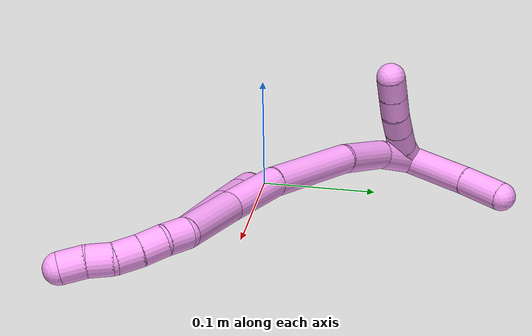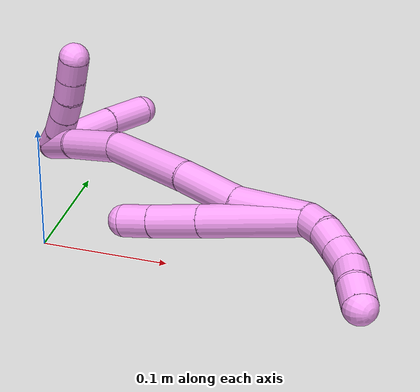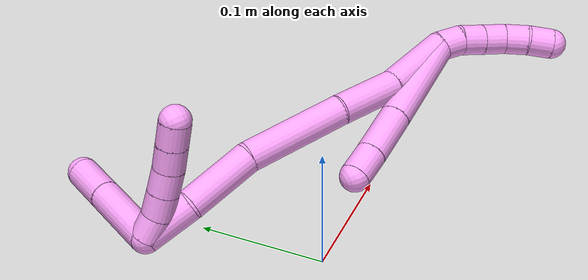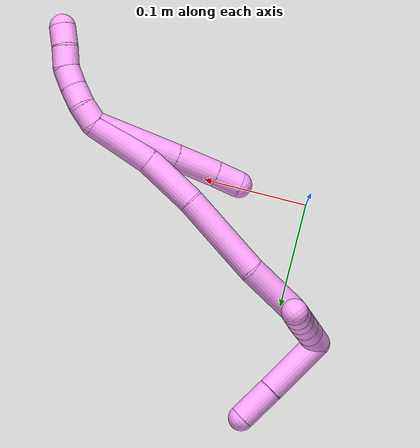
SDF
<sdf version="1.7">
 <world name="default">
  <model name="4">
   <static>0</static>
   <link name="4">
    <collision name="collision-cylinder-e_1_2_8">
     <pose>-0.015197 -0.01651 -0.03533 2.70443 -0.371599 -1.40457</pose>
     <geometry><cylinder><radius>0.0125</radius><length>0.083707</length></cylinder></geometry>
     <surface>
      <friction><ode><mu>1.16</mu><mu2>1.16</mu2><slip1>0</slip1><slip2>0</slip2></ode></friction>
      <contact><ode><kp>1e+06</kp><kd>1</kd><max_vel>0</max_vel><min_depth>0.001</min_depth></ode></contact>
     </surface>
    </collision>
    <visual name="visual-cylinder-e_1_2_8">
     <pose>-0.015197 -0.01651 -0.03533 2.70443 -0.371599 -1.40457</pose>
     <geometry><cylinder><radius>0.0125</radius><length>0.083707</length></cylinder></geometry>
     <material><ambient>1 0.65098 0.996078 1</ambient></material>
    </visual>
    <collision name="collision-cylinder-e_2_8_9">
     <pose>-0.037666 -0.041027 -0.088281 2.71514 -0.359374 -1.39608</pose>
     <geometry><cylinder><radius>0.0125</radius><length>0.041354</length></cylinder></geometry>
     <surface>
      <friction><ode><mu>1.16</mu><mu2>1.16</mu2><slip1>0</slip1><slip2>0</slip2></ode></friction>
      <contact><ode><kp>1e+06</kp><kd>1</kd><max_vel>0</max_vel><min_depth>0.001</min_depth></ode></contact>
     </surface>
    </collision>
    <visual name="visual-cylinder-e_2_8_9">
     <pose>-0.037666 -0.041027 -0.088281 2.71514 -0.359374 -1.39608</pose>
     <geometry><cylinder><radius>0.0125</radius><length>0.041354</length></cylinder></geometry>
     <material><ambient>1 0.65098 0.996078 1</ambient></material>
    </visual>
    <collision name="collision-cylinder-e_3_9_6">
     <pose>-0.049149 -0.053552 -0.116736 2.74641 -0.344431 -1.43063</pose>
     <geometry><cylinder><radius>0.0125</radius><length>0.024939</length></cylinder></geometry>
     <surface>
      <friction><ode><mu>1.16</mu><mu2>1.16</mu2><slip1>0</slip1><slip2>0</slip2></ode></friction>
      <contact><ode><kp>1e+06</kp><kd>1</kd><max_vel>0</max_vel><min_depth>0.001</min_depth></ode></contact>
     </surface>
    </collision>
    <visual name="visual-cylinder-e_3_9_6">
     <pose>-0.049149 -0.053552 -0.116736 2.74641 -0.344431 -1.43063</pose>
     <geometry><cylinder><radius>0.0125</radius><length>0.024939</length></cylinder></geometry>
     <material><ambient>1 0.65098 0.996078 1</ambient></material>
    </visual>
    <collision name="collision-cylinder-e_1_2_10">
     <pose>-0.000119 -0.001089 0.00994 0.109158 -0.011894 -0.00065</pose>
     <geometry><cylinder><radius>0.0125</radius><length>0.02</length></cylinder></geometry>
     <surface>
      <friction><ode><mu>1.16</mu><mu2>1.16</mu2><slip1>0</slip1><slip2>0</slip2></ode></friction>
      <contact><ode><kp>1e+06</kp><kd>1</kd><max_vel>0</max_vel><min_depth>0.001</min_depth></ode></contact>
     </surface>
    </collision>
    <visual name="visual-cylinder-e_1_2_10">
     <pose>-0.000119 -0.001089 0.00994 0.109158 -0.011894 -0.00065</pose>
     <geometry><cylinder><radius>0.0125</radius><length>0.02</length></cylinder></geometry>
     <material><ambient>1 0.65098 0.996078 1</ambient></material>
    </visual>
    <collision name="collision-cylinder-e_2_10_11">
     <pose>-0.000648 -0.005653 0.029248 0.355167 -0.041008 -0.007361</pose>
     <geometry><cylinder><radius>0.0125</radius><length>0.02</length></cylinder></geometry>
     <surface>
      <friction><ode><mu>1.16</mu><mu2>1.16</mu2><slip1>0</slip1><slip2>0</slip2></ode></friction>
      <contact><ode><kp>1e+06</kp><kd>1</kd><max_vel>0</max_vel><min_depth>0.001</min_depth></ode></contact>
     </surface>
    </collision>
    <visual name="visual-cylinder-e_2_10_11">
     <pose>-0.000648 -0.005653 0.029248 0.355167 -0.041008 -0.007361</pose>
     <geometry><cylinder><radius>0.0125</radius><length>0.02</length></cylinder></geometry>
     <material><ambient>1 0.65098 0.996078 1</ambient></material>
    </visual>
    <collision name="collision-cylinder-e_3_11_12">
     <pose>-0.002375 -0.012445 0.047957 0.341208 -0.132071 -0.022785</pose>
     <geometry><cylinder><radius>0.0125</radius><length>0.02</length></cylinder></geometry>
     <surface>
      <friction><ode><mu>1.16</mu><mu2>1.16</mu2><slip1>0</slip1><slip2>0</slip2></ode></friction>
      <contact><ode><kp>1e+06</kp><kd>1</kd><max_vel>0</max_vel><min_depth>0.001</min_depth></ode></contact>
     </surface>
    </collision>
    <visual name="visual-cylinder-e_3_11_12">
     <pose>-0.002375 -0.012445 0.047957 0.341208 -0.132071 -0.022785</pose>
     <geometry><cylinder><radius>0.0125</radius><length>0.02</length></cylinder></geometry>
     <material><ambient>1 0.65098 0.996078 1</ambient></material>
    </visual>
    <collision name="collision-cylinder-e_4_12_13">
     <pose>-0.007841 -0.019653 0.065523 0.441899 -0.427901 -0.09753</pose>
     <geometry><cylinder><radius>0.0125</radius><length>0.02</length></cylinder></geometry>
     <surface>
      <friction><ode><mu>1.16</mu><mu2>1.16</mu2><slip1>0</slip1><slip2>0</slip2></ode></friction>
      <contact><ode><kp>1e+06</kp><kd>1</kd><max_vel>0</max_vel><min_depth>0.001</min_depth></ode></contact>
     </surface>
    </collision>
    <visual name="visual-cylinder-e_4_12_13">
     <pose>-0.007841 -0.019653 0.065523 0.441899 -0.427901 -0.09753</pose>
     <geometry><cylinder><radius>0.0125</radius><length>0.02</length></cylinder></geometry>
     <material><ambient>1 0.65098 0.996078 1</ambient></material>
    </visual>
    <collision name="collision-cylinder-e_5_13_5">
     <pose>-0.01472 -0.028455 0.08202 0.535703 -0.276463 -0.076324</pose>
     <geometry><cylinder><radius>0.0125</radius><length>0.02</length></cylinder></geometry>
     <surface>
      <friction><ode><mu>1.16</mu><mu2>1.16</mu2><slip1>0</slip1><slip2>0</slip2></ode></friction>
      <contact><ode><kp>1e+06</kp><kd>1</kd><max_vel>0</max_vel><min_depth>0.001</min_depth></ode></contact>
     </surface>
    </collision>
    <visual name="visual-cylinder-e_5_13_5">
     <pose>-0.01472 -0.028455 0.08202 0.535703 -0.276463 -0.076324</pose>
     <geometry><cylinder><radius>0.0125</radius><length>0.02</length></cylinder></geometry>
     <material><ambient>1 0.65098 0.996078 1</ambient></material>
    </visual>
    <collision name="collision-cylinder-e_1_2_14">
     <pose>-0.008255 -0.00546 -0.029052 2.95582 -0.272312 -1.94733</pose>
     <geometry><cylinder><radius>0.0125</radius><length>0.061384</length></cylinder></geometry>
     <surface>
      <friction><ode><mu>1.16</mu><mu2>1.16</mu2><slip1>0</slip1><slip2>0</slip2></ode></friction>
      <contact><ode><kp>1e+06</kp><kd>1</kd><max_vel>0</max_vel><min_depth>0.001</min_depth></ode></contact>
     </surface>
    </collision>
    <visual name="visual-cylinder-e_1_2_14">
     <pose>-0.008255 -0.00546 -0.029052 2.95582 -0.272312 -1.94733</pose>
     <geometry><cylinder><radius>0.0125</radius><length>0.061384</length></cylinder></geometry>
     <material><ambient>1 0.65098 0.996078 1</ambient></material>
    </visual>
    <collision name="collision-cylinder-e_2_14_15">
     <pose>-0.021738 -0.010615 -0.084776 -3.13014 -0.193562 3.02372</pose>
     <geometry><cylinder><radius>0.0125</radius><length>0.054361</length></cylinder></geometry>
     <surface>
      <friction><ode><mu>1.16</mu><mu2>1.16</mu2><slip1>0</slip1><slip2>0</slip2></ode></friction>
      <contact><ode><kp>1e+06</kp><kd>1</kd><max_vel>0</max_vel><min_depth>0.001</min_depth></ode></contact>
     </surface>
    </collision>
    <visual name="visual-cylinder-e_2_14_15">
     <pose>-0.021738 -0.010615 -0.084776 -3.13014 -0.193562 3.02372</pose>
     <geometry><cylinder><radius>0.0125</radius><length>0.054361</length></cylinder></geometry>
     <material><ambient>1 0.65098 0.996078 1</ambient></material>
    </visual>
    <collision name="collision-cylinder-e_3_15_16">
     <pose>-0.029655 -0.012176 -0.153946 3.0977 -0.063125 -1.92653</pose>
     <geometry><cylinder><radius>0.0125</radius><length>0.085249</length></cylinder></geometry>
     <surface>
      <friction><ode><mu>1.16</mu><mu2>1.16</mu2><slip1>0</slip1><slip2>0</slip2></ode></friction>
      <contact><ode><kp>1e+06</kp><kd>1</kd><max_vel>0</max_vel><min_depth>0.001</min_depth></ode></contact>
     </surface>
    </collision>
    <visual name="visual-cylinder-e_3_15_16">
     <pose>-0.029655 -0.012176 -0.153946 3.0977 -0.063125 -1.92653</pose>
     <geometry><cylinder><radius>0.0125</radius><length>0.085249</length></cylinder></geometry>
     <material><ambient>1 0.65098 0.996078 1</ambient></material>
    </visual>
    <collision name="collision-cylinder-e_4_16_17">
     <pose>-0.033425 -0.021459 -0.224313 2.88147 -0.03745 -0.284422</pose>
     <geometry><cylinder><radius>0.0125</radius><length>0.057717</length></cylinder></geometry>
     <surface>
      <friction><ode><mu>1.16</mu><mu2>1.16</mu2><slip1>0</slip1><slip2>0</slip2></ode></friction>
      <contact><ode><kp>1e+06</kp><kd>1</kd><max_vel>0</max_vel><min_depth>0.001</min_depth></ode></contact>
     </surface>
    </collision>
    <visual name="visual-cylinder-e_4_16_17">
     <pose>-0.033425 -0.021459 -0.224313 2.88147 -0.03745 -0.284422</pose>
     <geometry><cylinder><radius>0.0125</radius><length>0.057717</length></cylinder></geometry>
     <material><ambient>1 0.65098 0.996078 1</ambient></material>
    </visual>
    <collision name="collision-cylinder-e_5_17_1">
     <pose>-0.030951 -0.034137 -0.271825 2.87992 0.173014 1.16542</pose>
     <geometry><cylinder><radius>0.0125</radius><length>0.041288</length></cylinder></geometry>
     <surface>
      <friction><ode><mu>1.16</mu><mu2>1.16</mu2><slip1>0</slip1><slip2>0</slip2></ode></friction>
      <contact><ode><kp>1e+06</kp><kd>1</kd><max_vel>0</max_vel><min_depth>0.001</min_depth></ode></contact>
     </surface>
    </collision>
    <visual name="visual-cylinder-e_5_17_1">
     <pose>-0.030951 -0.034137 -0.271825 2.87992 0.173014 1.16542</pose>
     <geometry><cylinder><radius>0.0125</radius><length>0.041288</length></cylinder></geometry>
     <material><ambient>1 0.65098 0.996078 1</ambient></material>
    </visual>
    <collision name="collision-cylinder-e_1_1_18">
     <pose>-0.031051 -0.032698 -0.285007 -0.803572 -0.374011 0.160451</pose>
     <geometry><cylinder><radius>0.0125</radius><length>0.02</length></cylinder></geometry>
     <surface>
      <friction><ode><mu>1.16</mu><mu2>1.16</mu2><slip1>0</slip1><slip2>0</slip2></ode></friction>
      <contact><ode><kp>1e+06</kp><kd>1</kd><max_vel>0</max_vel><min_depth>0.001</min_depth></ode></contact>
     </surface>
    </collision>
    <visual name="visual-cylinder-e_1_1_18">
     <pose>-0.031051 -0.032698 -0.285007 -0.803572 -0.374011 0.160451</pose>
     <geometry><cylinder><radius>0.0125</radius><length>0.02</length></cylinder></geometry>
     <material><ambient>1 0.65098 0.996078 1</ambient></material>
    </visual>
    <collision name="collision-cylinder-e_2_18_19">
     <pose>-0.038714 -0.018087 -0.273924 -1.04204 -0.412539 0.239035</pose>
     <geometry><cylinder><radius>0.0125</radius><length>0.02</length></cylinder></geometry>
     <surface>
      <friction><ode><mu>1.16</mu><mu2>1.16</mu2><slip1>0</slip1><slip2>0</slip2></ode></friction>
      <contact><ode><kp>1e+06</kp><kd>1</kd><max_vel>0</max_vel><min_depth>0.001</min_depth></ode></contact>
     </surface>
    </collision>
    <visual name="visual-cylinder-e_2_18_19">
     <pose>-0.038714 -0.018087 -0.273924 -1.04204 -0.412539 0.239035</pose>
     <geometry><cylinder><radius>0.0125</radius><length>0.02</length></cylinder></geometry>
     <material><ambient>1 0.65098 0.996078 1</ambient></material>
    </visual>
    <collision name="collision-cylinder-e_3_19_20">
     <pose>-0.046806 -0.002184 -0.264893 -1.06667 -0.420531 0.250687</pose>
     <geometry><cylinder><radius>0.0125</radius><length>0.02</length></cylinder></geometry>
     <surface>
      <friction><ode><mu>1.16</mu><mu2>1.16</mu2><slip1>0</slip1><slip2>0</slip2></ode></friction>
      <contact><ode><kp>1e+06</kp><kd>1</kd><max_vel>0</max_vel><min_depth>0.001</min_depth></ode></contact>
     </surface>
    </collision>
    <visual name="visual-cylinder-e_3_19_20">
     <pose>-0.046806 -0.002184 -0.264893 -1.06667 -0.420531 0.250687</pose>
     <geometry><cylinder><radius>0.0125</radius><length>0.02</length></cylinder></geometry>
     <material><ambient>1 0.65098 0.996078 1</ambient></material>
    </visual>
    <collision name="collision-cylinder-e_4_20_21">
     <pose>-0.055401 0.01405 -0.257059 -1.17694 -0.468221 0.315652</pose>
     <geometry><cylinder><radius>0.0125</radius><length>0.02</length></cylinder></geometry>
     <surface>
      <friction><ode><mu>1.16</mu><mu2>1.16</mu2><slip1>0</slip1><slip2>0</slip2></ode></friction>
      <contact><ode><kp>1e+06</kp><kd>1</kd><max_vel>0</max_vel><min_depth>0.001</min_depth></ode></contact>
     </surface>
    </collision>
    <visual name="visual-cylinder-e_4_20_21">
     <pose>-0.055401 0.01405 -0.257059 -1.17694 -0.468221 0.315652</pose>
     <geometry><cylinder><radius>0.0125</radius><length>0.02</length></cylinder></geometry>
     <material><ambient>1 0.65098 0.996078 1</ambient></material>
    </visual>
    <collision name="collision-cylinder-e_5_21_4">
     <pose>-0.064409 0.030543 -0.250217 -1.17818 -0.466243 0.314707</pose>
     <geometry><cylinder><radius>0.0125</radius><length>0.02</length></cylinder></geometry>
     <surface>
      <friction><ode><mu>1.16</mu><mu2>1.16</mu2><slip1>0</slip1><slip2>0</slip2></ode></friction>
      <contact><ode><kp>1e+06</kp><kd>1</kd><max_vel>0</max_vel><min_depth>0.001</min_depth></ode></contact>
     </surface>
    </collision>
    <visual name="visual-cylinder-e_5_21_4">
     <pose>-0.064409 0.030543 -0.250217 -1.17818 -0.466243 0.314707</pose>
     <geometry><cylinder><radius>0.0125</radius><length>0.02</length></cylinder></geometry>
     <material><ambient>1 0.65098 0.996078 1</ambient></material>
    </visual>
    <collision name="collision-cylinder-e_1_1_22">
     <pose>-0.001408 -0.023159 -0.295429 -1.81 0.999235 -1.2146</pose>
     <geometry><cylinder><radius>0.0125</radius><length>0.061801</length></cylinder></geometry>
     <surface>
      <friction><ode><mu>1.16</mu><mu2>1.16</mu2><slip1>0</slip1><slip2>0</slip2></ode></friction>
      <contact><ode><kp>1e+06</kp><kd>1</kd><max_vel>0</max_vel><min_depth>0.001</min_depth></ode></contact>
     </surface>
    </collision>
    <visual name="visual-cylinder-e_1_1_22">
     <pose>-0.001408 -0.023159 -0.295429 -1.81 0.999235 -1.2146</pose>
     <geometry><cylinder><radius>0.0125</radius><length>0.061801</length></cylinder></geometry>
     <material><ambient>1 0.65098 0.996078 1</ambient></material>
    </visual>
    <collision name="collision-cylinder-e_2_22_3">
     <pose>0.04102 0.00255 -0.301602 -1.80031 1.03663 -1.24664</pose>
     <geometry><cylinder><radius>0.0125</radius><length>0.038199</length></cylinder></geometry>
     <surface>
      <friction><ode><mu>1.16</mu><mu2>1.16</mu2><slip1>0</slip1><slip2>0</slip2></ode></friction>
      <contact><ode><kp>1e+06</kp><kd>1</kd><max_vel>0</max_vel><min_depth>0.001</min_depth></ode></contact>
     </surface>
    </collision>
    <visual name="visual-cylinder-e_2_22_3">
     <pose>0.04102 0.00255 -0.301602 -1.80031 1.03663 -1.24664</pose>
     <geometry><cylinder><radius>0.0125</radius><length>0.038199</length></cylinder></geometry>
     <material><ambient>1 0.65098 0.996078 1</ambient></material>
    </visual>
    <collision name="collision-sphere-3">
     <pose>0.057459 0.012019 -0.303814 0 -0 0</pose>
     <geometry><sphere><radius>0.0125</radius></sphere></geometry>
     <surface>
      <friction><ode><mu>1.16</mu><mu2>1.16</mu2><slip1>0</slip1><slip2>0</slip2></ode></friction>
      <contact><ode><kp>1e+06</kp><kd>1</kd><max_vel>0</max_vel><min_depth>0.001</min_depth></ode></contact>
     </surface>
    </collision>
    <visual name="visual-sphere-3">
     <pose>0.057459 0.012019 -0.303814 0 -0 0</pose>
     <geometry><sphere><radius>0.0125</radius></sphere></geometry>
     <material><ambient>1 0.65098 0.996078 1</ambient></material>
    </visual>
    <collision name="collision-sphere-22">
     <pose>0.02458 -0.00692 -0.299389 0 -0 0</pose>
     <geometry><sphere><radius>0.0125</radius></sphere></geometry>
     <surface>
      <friction><ode><mu>1.16</mu><mu2>1.16</mu2><slip1>0</slip1><slip2>0</slip2></ode></friction>
      <contact><ode><kp>1e+06</kp><kd>1</kd><max_vel>0</max_vel><min_depth>0.001</min_depth></ode></contact>
     </surface>
    </collision>
    <visual name="visual-sphere-22">
     <pose>0.02458 -0.00692 -0.299389 0 -0 0</pose>
     <geometry><sphere><radius>0.0125</radius></sphere></geometry>
     <material><ambient>1 0.65098 0.996078 1</ambient></material>
    </visual>
    <collision name="collision-sphere-4">
     <pose>-0.068905 0.038796 -0.246799 0 -0 0</pose>
     <geometry><sphere><radius>0.0125</radius></sphere></geometry>
     <surface>
      <friction><ode><mu>1.16</mu><mu2>1.16</mu2><slip1>0</slip1><slip2>0</slip2></ode></friction>
      <contact><ode><kp>1e+06</kp><kd>1</kd><max_vel>0</max_vel><min_depth>0.001</min_depth></ode></contact>
     </surface>
    </collision>
    <visual name="visual-sphere-4">
     <pose>-0.068905 0.038796 -0.246799 0 -0 0</pose>
     <geometry><sphere><radius>0.0125</radius></sphere></geometry>
     <material><ambient>1 0.65098 0.996078 1</ambient></material>
    </visual>
    <collision name="collision-sphere-21">
     <pose>-0.059914 0.02229 -0.253635 0 -0 0</pose>
     <geometry><sphere><radius>0.0125</radius></sphere></geometry>
     <surface>
      <friction><ode><mu>1.16</mu><mu2>1.16</mu2><slip1>0</slip1><slip2>0</slip2></ode></friction>
      <contact><ode><kp>1e+06</kp><kd>1</kd><max_vel>0</max_vel><min_depth>0.001</min_depth></ode></contact>
     </surface>
    </collision>
    <visual name="visual-sphere-21">
     <pose>-0.059914 0.02229 -0.253635 0 -0 0</pose>
     <geometry><sphere><radius>0.0125</radius></sphere></geometry>
     <material><ambient>1 0.65098 0.996078 1</ambient></material>
    </visual>
    <collision name="collision-sphere-20">
     <pose>-0.050888 0.005809 -0.260484 0 -0 0</pose>
     <geometry><sphere><radius>0.0125</radius></sphere></geometry>
     <surface>
      <friction><ode><mu>1.16</mu><mu2>1.16</mu2><slip1>0</slip1><slip2>0</slip2></ode></friction>
      <contact><ode><kp>1e+06</kp><kd>1</kd><max_vel>0</max_vel><min_depth>0.001</min_depth></ode></contact>
     </surface>
    </collision>
    <visual name="visual-sphere-20">
     <pose>-0.050888 0.005809 -0.260484 0 -0 0</pose>
     <geometry><sphere><radius>0.0125</radius></sphere></geometry>
     <material><ambient>1 0.65098 0.996078 1</ambient></material>
    </visual>
    <collision name="collision-sphere-11">
     <pose>-0.001058 -0.009128 0.038616 0 -0 0</pose>
     <geometry><sphere><radius>0.0125</radius></sphere></geometry>
     <surface>
      <friction><ode><mu>1.16</mu><mu2>1.16</mu2><slip1>0</slip1><slip2>0</slip2></ode></friction>
      <contact><ode><kp>1e+06</kp><kd>1</kd><max_vel>0</max_vel><min_depth>0.001</min_depth></ode></contact>
     </surface>
    </collision>
    <visual name="visual-sphere-11">
     <pose>-0.001058 -0.009128 0.038616 0 -0 0</pose>
     <geometry><sphere><radius>0.0125</radius></sphere></geometry>
     <material><ambient>1 0.65098 0.996078 1</ambient></material>
    </visual>
    <collision name="collision-sphere-10">
     <pose>-0.000238 -0.002179 0.01988 0 -0 0</pose>
     <geometry><sphere><radius>0.0125</radius></sphere></geometry>
     <surface>
      <friction><ode><mu>1.16</mu><mu2>1.16</mu2><slip1>0</slip1><slip2>0</slip2></ode></friction>
      <contact><ode><kp>1e+06</kp><kd>1</kd><max_vel>0</max_vel><min_depth>0.001</min_depth></ode></contact>
     </surface>
    </collision>
    <visual name="visual-sphere-10">
     <pose>-0.000238 -0.002179 0.01988 0 -0 0</pose>
     <geometry><sphere><radius>0.0125</radius></sphere></geometry>
     <material><ambient>1 0.65098 0.996078 1</ambient></material>
    </visual>
    <collision name="collision-sphere-6">
     <pose>-0.053359 -0.05807 -0.127569 0 -0 0</pose>
     <geometry><sphere><radius>0.0125</radius></sphere></geometry>
     <surface>
      <friction><ode><mu>1.16</mu><mu2>1.16</mu2><slip1>0</slip1><slip2>0</slip2></ode></friction>
      <contact><ode><kp>1e+06</kp><kd>1</kd><max_vel>0</max_vel><min_depth>0.001</min_depth></ode></contact>
     </surface>
    </collision>
    <visual name="visual-sphere-6">
     <pose>-0.053359 -0.05807 -0.127569 0 -0 0</pose>
     <geometry><sphere><radius>0.0125</radius></sphere></geometry>
     <material><ambient>1 0.65098 0.996078 1</ambient></material>
    </visual>
    <collision name="collision-sphere-9">
     <pose>-0.044938 -0.049033 -0.105904 0 -0 0</pose>
     <geometry><sphere><radius>0.0125</radius></sphere></geometry>
     <surface>
      <friction><ode><mu>1.16</mu><mu2>1.16</mu2><slip1>0</slip1><slip2>0</slip2></ode></friction>
      <contact><ode><kp>1e+06</kp><kd>1</kd><max_vel>0</max_vel><min_depth>0.001</min_depth></ode></contact>
     </surface>
    </collision>
    <visual name="visual-sphere-9">
     <pose>-0.044938 -0.049033 -0.105904 0 -0 0</pose>
     <geometry><sphere><radius>0.0125</radius></sphere></geometry>
     <material><ambient>1 0.65098 0.996078 1</ambient></material>
    </visual>
    <collision name="collision-sphere-2">
     <geometry><sphere><radius>0.0125</radius></sphere></geometry>
     <surface>
      <friction><ode><mu>1.16</mu><mu2>1.16</mu2><slip1>0</slip1><slip2>0</slip2></ode></friction>
      <contact><ode><kp>1e+06</kp><kd>1</kd><max_vel>0</max_vel><min_depth>0.001</min_depth></ode></contact>
     </surface>
    </collision>
    <visual name="visual-sphere-2">
     <geometry><sphere><radius>0.0125</radius></sphere></geometry>
     <material><ambient>1 0.65098 0.996078 1</ambient></material>
    </visual>
    <collision name="collision-sphere-19">
     <pose>-0.042723 -0.010177 -0.269303 0 -0 0</pose>
     <geometry><sphere><radius>0.0125</radius></sphere></geometry>
     <surface>
      <friction><ode><mu>1.16</mu><mu2>1.16</mu2><slip1>0</slip1><slip2>0</slip2></ode></friction>
      <contact><ode><kp>1e+06</kp><kd>1</kd><max_vel>0</max_vel><min_depth>0.001</min_depth></ode></contact>
     </surface>
    </collision>
    <visual name="visual-sphere-19">
     <pose>-0.042723 -0.010177 -0.269303 0 -0 0</pose>
     <geometry><sphere><radius>0.0125</radius></sphere></geometry>
     <material><ambient>1 0.65098 0.996078 1</ambient></material>
    </visual>
    <collision name="collision-sphere-8">
     <pose>-0.030395 -0.03302 -0.070659 0 -0 0</pose>
     <geometry><sphere><radius>0.0125</radius></sphere></geometry>
     <surface>
      <friction><ode><mu>1.16</mu><mu2>1.16</mu2><slip1>0</slip1><slip2>0</slip2></ode></friction>
      <contact><ode><kp>1e+06</kp><kd>1</kd><max_vel>0</max_vel><min_depth>0.001</min_depth></ode></contact>
     </surface>
    </collision>
    <visual name="visual-sphere-8">
     <pose>-0.030395 -0.03302 -0.070659 0 -0 0</pose>
     <geometry><sphere><radius>0.0125</radius></sphere></geometry>
     <material><ambient>1 0.65098 0.996078 1</ambient></material>
    </visual>
    <collision name="collision-sphere-12">
     <pose>-0.003692 -0.015762 0.057298 0 -0 0</pose>
     <geometry><sphere><radius>0.0125</radius></sphere></geometry>
     <surface>
      <friction><ode><mu>1.16</mu><mu2>1.16</mu2><slip1>0</slip1><slip2>0</slip2></ode></friction>
      <contact><ode><kp>1e+06</kp><kd>1</kd><max_vel>0</max_vel><min_depth>0.001</min_depth></ode></contact>
     </surface>
    </collision>
    <visual name="visual-sphere-12">
     <pose>-0.003692 -0.015762 0.057298 0 -0 0</pose>
     <geometry><sphere><radius>0.0125</radius></sphere></geometry>
     <material><ambient>1 0.65098 0.996078 1</ambient></material>
    </visual>
    <collision name="collision-sphere-13">
     <pose>-0.011991 -0.023544 0.073747 0 -0 0</pose>
     <geometry><sphere><radius>0.0125</radius></sphere></geometry>
     <surface>
      <friction><ode><mu>1.16</mu><mu2>1.16</mu2><slip1>0</slip1><slip2>0</slip2></ode></friction>
      <contact><ode><kp>1e+06</kp><kd>1</kd><max_vel>0</max_vel><min_depth>0.001</min_depth></ode></contact>
     </surface>
    </collision>
    <visual name="visual-sphere-13">
     <pose>-0.011991 -0.023544 0.073747 0 -0 0</pose>
     <geometry><sphere><radius>0.0125</radius></sphere></geometry>
     <material><ambient>1 0.65098 0.996078 1</ambient></material>
    </visual>
    <collision name="collision-sphere-5">
     <pose>-0.01745 -0.033365 0.090292 0 -0 0</pose>
     <geometry><sphere><radius>0.0125</radius></sphere></geometry>
     <surface>
      <friction><ode><mu>1.16</mu><mu2>1.16</mu2><slip1>0</slip1><slip2>0</slip2></ode></friction>
      <contact><ode><kp>1e+06</kp><kd>1</kd><max_vel>0</max_vel><min_depth>0.001</min_depth></ode></contact>
     </surface>
    </collision>
    <visual name="visual-sphere-5">
     <pose>-0.01745 -0.033365 0.090292 0 -0 0</pose>
     <geometry><sphere><radius>0.0125</radius></sphere></geometry>
     <material><ambient>1 0.65098 0.996078 1</ambient></material>
    </visual>
    <collision name="collision-sphere-14">
     <pose>-0.01651 -0.01092 -0.058105 0 -0 0</pose>
     <geometry><sphere><radius>0.0125</radius></sphere></geometry>
     <surface>
      <friction><ode><mu>1.16</mu><mu2>1.16</mu2><slip1>0</slip1><slip2>0</slip2></ode></friction>
      <contact><ode><kp>1e+06</kp><kd>1</kd><max_vel>0</max_vel><min_depth>0.001</min_depth></ode></contact>
     </surface>
    </collision>
    <visual name="visual-sphere-14">
     <pose>-0.01651 -0.01092 -0.058105 0 -0 0</pose>
     <geometry><sphere><radius>0.0125</radius></sphere></geometry>
     <material><ambient>1 0.65098 0.996078 1</ambient></material>
    </visual>
    <collision name="collision-sphere-15">
     <pose>-0.026966 -0.010309 -0.111447 0 -0 0</pose>
     <geometry><sphere><radius>0.0125</radius></sphere></geometry>
     <surface>
      <friction><ode><mu>1.16</mu><mu2>1.16</mu2><slip1>0</slip1><slip2>0</slip2></ode></friction>
      <contact><ode><kp>1e+06</kp><kd>1</kd><max_vel>0</max_vel><min_depth>0.001</min_depth></ode></contact>
     </surface>
    </collision>
    <visual name="visual-sphere-15">
     <pose>-0.026966 -0.010309 -0.111447 0 -0 0</pose>
     <geometry><sphere><radius>0.0125</radius></sphere></geometry>
     <material><ambient>1 0.65098 0.996078 1</ambient></material>
    </visual>
    <collision name="collision-sphere-16">
     <pose>-0.032344 -0.014042 -0.196445 0 -0 0</pose>
     <geometry><sphere><radius>0.0125</radius></sphere></geometry>
     <surface>
      <friction><ode><mu>1.16</mu><mu2>1.16</mu2><slip1>0</slip1><slip2>0</slip2></ode></friction>
      <contact><ode><kp>1e+06</kp><kd>1</kd><max_vel>0</max_vel><min_depth>0.001</min_depth></ode></contact>
     </surface>
    </collision>
    <visual name="visual-sphere-16">
     <pose>-0.032344 -0.014042 -0.196445 0 -0 0</pose>
     <geometry><sphere><radius>0.0125</radius></sphere></geometry>
     <material><ambient>1 0.65098 0.996078 1</ambient></material>
    </visual>
    <collision name="collision-sphere-17">
     <pose>-0.034505 -0.028877 -0.252181 0 -0 0</pose>
     <geometry><sphere><radius>0.0125</radius></sphere></geometry>
     <surface>
      <friction><ode><mu>1.16</mu><mu2>1.16</mu2><slip1>0</slip1><slip2>0</slip2></ode></friction>
      <contact><ode><kp>1e+06</kp><kd>1</kd><max_vel>0</max_vel><min_depth>0.001</min_depth></ode></contact>
     </surface>
    </collision>
    <visual name="visual-sphere-17">
     <pose>-0.034505 -0.028877 -0.252181 0 -0 0</pose>
     <geometry><sphere><radius>0.0125</radius></sphere></geometry>
     <material><ambient>1 0.65098 0.996078 1</ambient></material>
    </visual>
    <collision name="collision-sphere-1">
     <pose>-0.027397 -0.039398 -0.291469 0 -0 0</pose>
     <geometry><sphere><radius>0.0125</radius></sphere></geometry>
     <surface>
      <friction><ode><mu>1.16</mu><mu2>1.16</mu2><slip1>0</slip1><slip2>0</slip2></ode></friction>
      <contact><ode><kp>1e+06</kp><kd>1</kd><max_vel>0</max_vel><min_depth>0.001</min_depth></ode></contact>
     </surface>
    </collision>
    <visual name="visual-sphere-1">
     <pose>-0.027397 -0.039398 -0.291469 0 -0 0</pose>
     <geometry><sphere><radius>0.0125</radius></sphere></geometry>
     <material><ambient>1 0.65098 0.996078 1</ambient></material>
    </visual>
    <collision name="collision-sphere-18">
     <pose>-0.034704 -0.025997 -0.278546 0 -0 0</pose>
     <geometry><sphere><radius>0.0125</radius></sphere></geometry>
     <surface>
      <friction><ode><mu>1.16</mu><mu2>1.16</mu2><slip1>0</slip1><slip2>0</slip2></ode></friction>
      <contact><ode><kp>1e+06</kp><kd>1</kd><max_vel>0</max_vel><min_depth>0.001</min_depth></ode></contact>
     </surface>
    </collision>
    <visual name="visual-sphere-18">
     <pose>-0.034704 -0.025997 -0.278546 0 -0 0</pose>
     <geometry><sphere><radius>0.0125</radius></sphere></geometry>
     <material><ambient>1 0.65098 0.996078 1</ambient></material>
    </visual>
    <inertial>
     <pose>-0.020321 -0.015813 -0.139883 0 -0 0</pose>
     <mass>0.75</mass>
     <inertia><ixx>-0.000135</ixx><ixy>0</ixy><ixz>0</ixz><iyy>-8.3e-05</iyy><iyz>0</iyz><izz>1e-05</izz></inertia>
    </inertial>
   </link>
   <pose>0.210768 -0.016738 0.070258 1.4235 0.545197 0.825785</pose>
  </model>
 </world>
</sdf>
